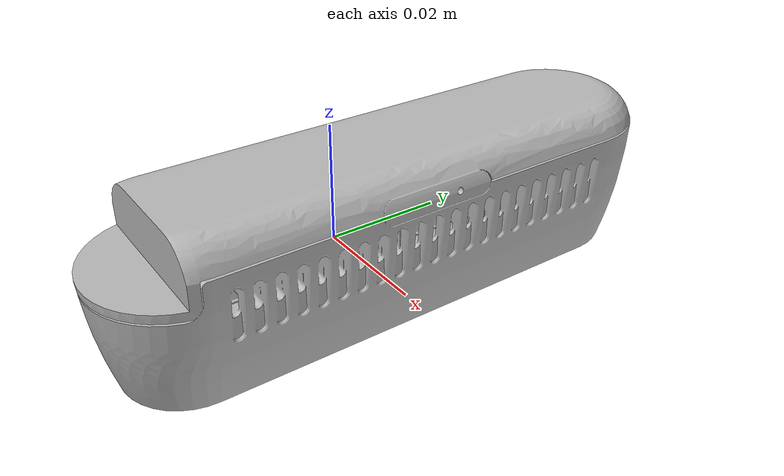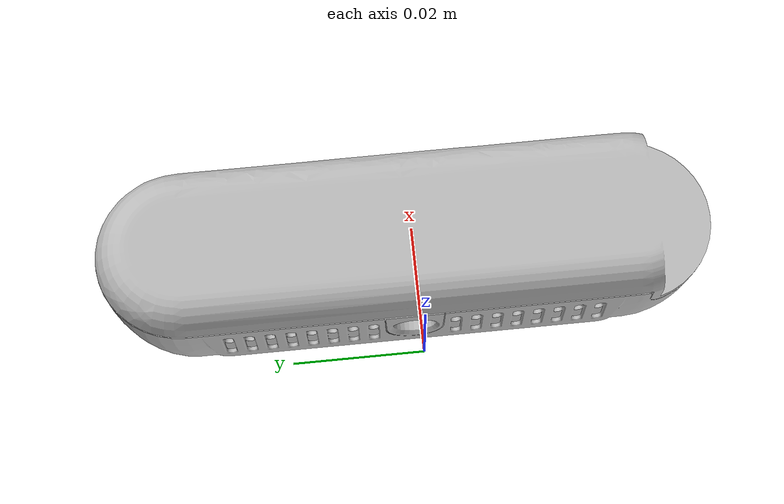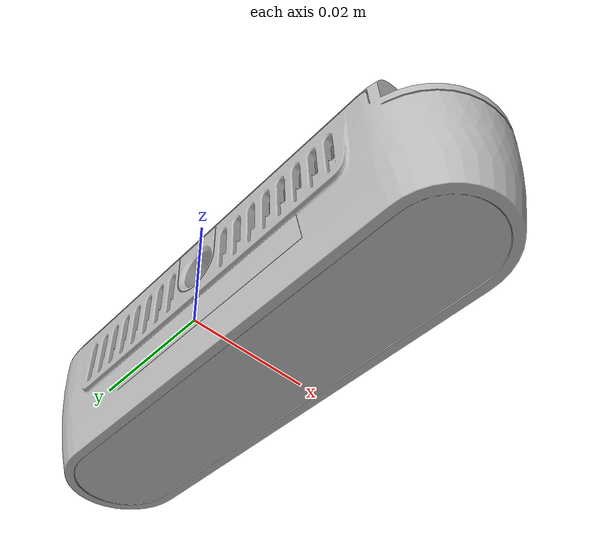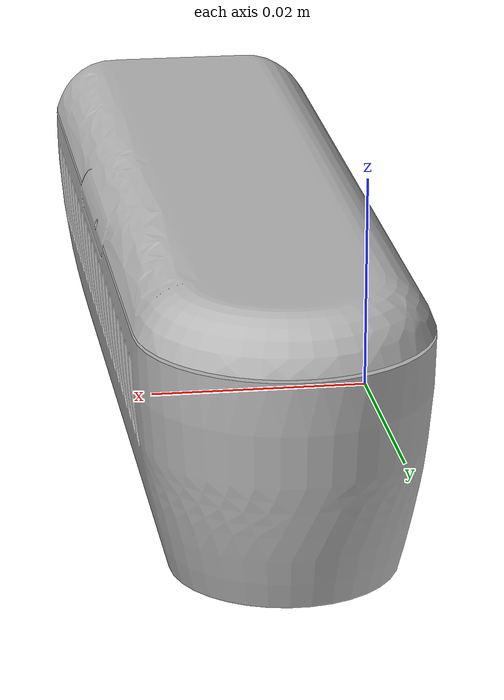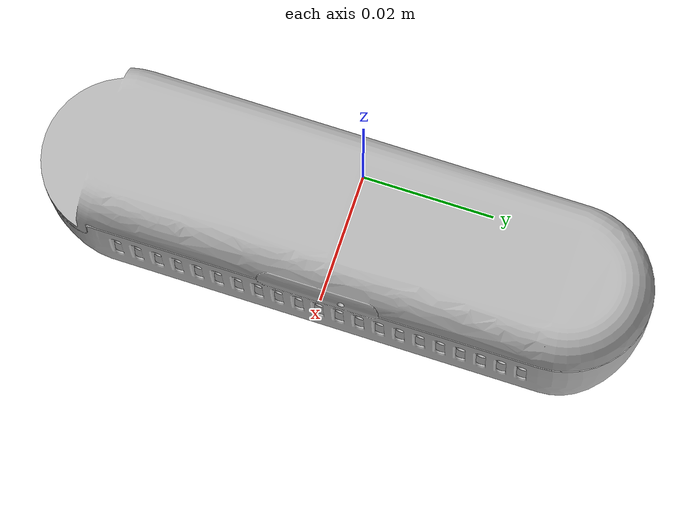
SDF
<?xml version='1.0'?>
<sdf version='1.6'>
  <model name='realsense_camera'>
    <link name='camera_bottom_screw_frame'>
      <pose frame=''>0 0 0 0 -0 0</pose>
      <inertial>
        <pose frame=''>0 0.0175 0.0125 0 -0.0 0</pose>
        <mass>0.564</mass>
        <inertia>
          <ixx>0.00388124</ixx>
          <ixy>0</ixy>
          <ixz>0</ixz>
          <iyy>0.00049894</iyy>
          <iyz>0</iyz>
          <izz>0.00387926</izz>
        </inertia>
      </inertial>
      <collision name='camera_bottom_screw_frame_fixed_joint_lump__camera_link_collision'>
        <pose frame=''>0 0 0.0125 0 -0 0</pose>
        <geometry>
          <box>
            <size>0.02505 0.09 0.025</size>
          </box>
        </geometry>
        <surface>
          <contact>
            <ode>
              <kp>1e+13</kp>
              <kd>1</kd>
            </ode>
          </contact>
          <friction>
            <ode>
              <mu2>1</mu2>
              <fdir1>0 0 0</fdir1>
            </ode>
          </friction>
        </surface>
      </collision>
      <visual name='camera_bottom_screw_frame_fixed_joint_lump__camera_link_visual'>
        <pose frame=''>0.0149 0 0.0125 1.5708 -0 1.5708</pose>
        <geometry>
          <mesh>
            <scale>1 1 1</scale>
            <uri>model://d435/meshes/d435.dae</uri>
          </mesh>
        </geometry>
        <material>
          <script>
            <uri>__default__</uri>
            <name>__default__</name>
          </script>
        </material>
      </visual>
      <gravity>1</gravity>
      <velocity_decay/>
      <self_collide>0</self_collide>
      <self_collide>0</self_collide>
      <enable_wind>0</enable_wind>
      <kinematic>0</kinematic>
      <gravity>1</gravity>
      <sensor name='cameracolor' type='camera'>
        <camera name='camera'>
          <horizontal_fov>1.21126</horizontal_fov>
          <image>
            <width>1920</width>
            <height>1080</height>
            <format>RGB_INT8</format>
          </image>
          <clip>
            <near>0.1</near>
            <far>100</far>
          </clip>
          <noise>
            <type>gaussian</type>
            <mean>0</mean>
            <stddev>0.007</stddev>
          </noise>
        </camera>
        <always_on>1</always_on>
        <update_rate>30</update_rate>
        <visualize>1</visualize>
        <pose frame=''>0 0.0175 0.0125 0 0.78539816339 0</pose>
      </sensor>
      <sensor name='cameraired1' type='camera'>
        <camera name='camera'>
          <horizontal_fov>1.48702</horizontal_fov>
          <image>
            <width>1280</width>
            <height>720</height>
            <format>L_INT8</format>
          </image>
          <clip>
            <near>0.1</near>
            <far>100</far>
          </clip>
          <noise>
            <type>gaussian</type>
            <mean>0</mean>
            <stddev>0.05</stddev>
          </noise>
        </camera>
        <always_on>1</always_on>
        <update_rate>90</update_rate>
        <visualize>0</visualize>
        <pose frame=''>0 0.0175 0.0125 0 0.78539816339 0</pose>
      </sensor>
      <sensor name='cameraired2' type='camera'>
        <camera name='camera'>
          <horizontal_fov>1.48702</horizontal_fov>
          <image>
            <width>1280</width>
            <height>720</height>
            <format>L_INT8</format>
          </image>
          <clip>
            <near>0.1</near>
            <far>100</far>
          </clip>
          <noise>
            <type>gaussian</type>
            <mean>0</mean>
            <stddev>0.05</stddev>
          </noise>
        </camera>
        <always_on>1</always_on>
        <update_rate>90</update_rate>
        <visualize>0</visualize>
        <pose frame=''>0 0.0175 0.0125 0 0.78539816339 0</pose>
      </sensor>
      <sensor name='cameradepth' type='depth'>
        <camera name='camera'>
          <horizontal_fov>1.48702</horizontal_fov>
          <image>
            <width>1280</width>
            <height>720</height>
          </image>
          <clip>
            <near>0.1</near>
            <far>100</far>
          </clip>
          <noise>
            <type>gaussian</type>
            <mean>0</mean>
            <stddev>0.1</stddev>
          </noise>
        </camera>
        <always_on>1</always_on>
        <update_rate>90</update_rate>
        <visualize>0</visualize>
        <pose frame=''>0 0.0175 0.0125 0 0.78539816339 0</pose>
      </sensor>
    </link>
    <static>0</static>
    <plugin name='camera' filename='librealsense_gazebo_plugin.so'>
      <prefix>camera</prefix>
      <depthUpdateRate>60.0</depthUpdateRate>
      <colorUpdateRate>60.0</colorUpdateRate>
      <infraredUpdateRate>60.0</infraredUpdateRate>
      <depthTopicName>depth/image_raw</depthTopicName>
      <depthCameraInfoTopicName>depth/camera_info</depthCameraInfoTopicName>
      <colorTopicName>color/image_raw</colorTopicName>
      <colorCameraInfoTopicName>color/camera_info</colorCameraInfoTopicName>
      <infrared1TopicName>infra1/image_raw</infrared1TopicName>
      <infrared1CameraInfoTopicName>infra1/camera_info</infrared1CameraInfoTopicName>
      <infrared2TopicName>infra2/image_raw</infrared2TopicName>
      <infrared2CameraInfoTopicName>infra2/camera_info</infrared2CameraInfoTopicName>
      <colorOpticalframeName>camera_color_optical_frame</colorOpticalframeName>
      <depthOpticalframeName>camera_depth_optical_frame</depthOpticalframeName>
      <infrared1OpticalframeName>camera_left_ir_optical_frame</infrared1OpticalframeName>
      <infrared2OpticalframeName>camera_right_ir_optical_frame</infrared2OpticalframeName>
      <rangeMinDepth>0.2</rangeMinDepth>
      <rangeMaxDepth>10.0</rangeMaxDepth>
      <pointCloud>false</pointCloud>
      <pointCloudTopicName>depth/points</pointCloudTopicName>
      <pointCloudCutoff>0.5</pointCloudCutoff>
    </plugin>
  </model>
</sdf>
